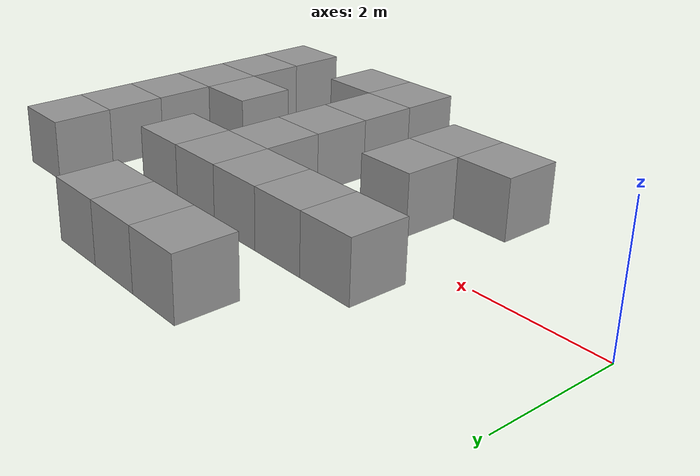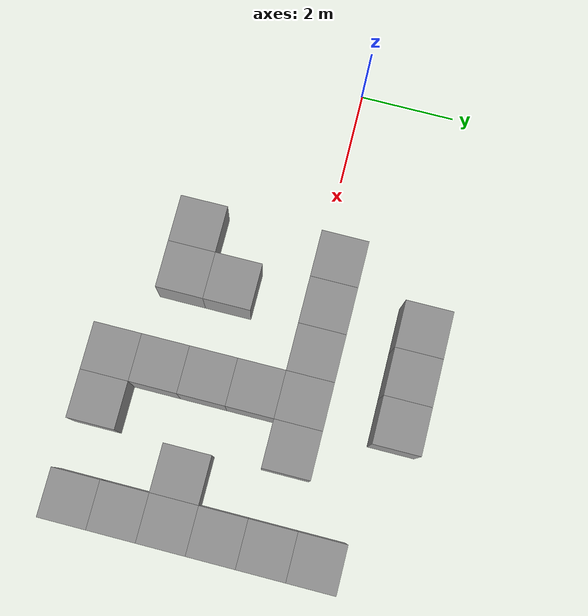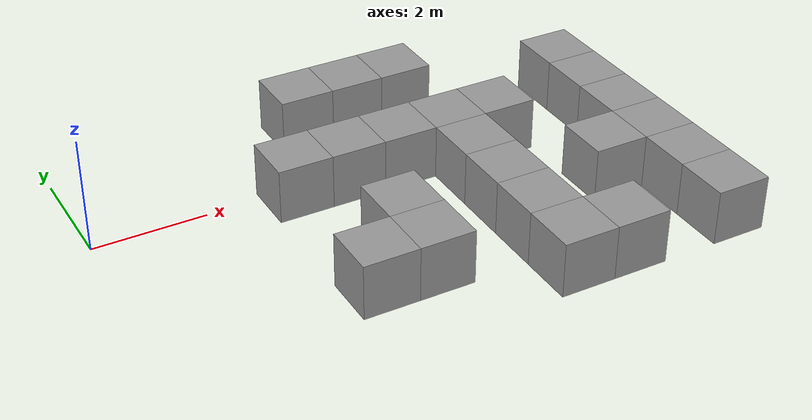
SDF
<sdf version="1.7">
 <model name="maze1">
  <link name="link_1_clone_133">
   <inertial>
    <mass>1</mass>
    <inertia>
     <ixx>0.166667</ixx>
     <ixy>0</ixy>
     <ixz>0</ixz>
     <iyy>0.166667</iyy>
     <iyz>0</iyz>
     <izz>0.166667</izz>
    </inertia>
   </inertial>
   <pose>7.75382 0.374651 0 0 -0 0</pose>
   <visual name="visual">
    <geometry><box><size>1 1 1</size></box></geometry>
    <material>
     <lighting>1</lighting>
     <script><uri>file://media/materials/scripts/gazebo.material</uri><name>Gazebo/Grey</name></script>
     <shader type="pixel"><normal_map>__default__</normal_map></shader>
     <ambient>0.3 0.3 0.3 1</ambient>
     <diffuse>0.7 0.7 0.7 1</diffuse>
     <specular>0.01 0.01 0.01 1</specular>
     <emissive>0 0 0 1</emissive>
    </material>
   </visual>
   <collision name="collision">
    <geometry><box><size>1 1 1</size></box></geometry>
    <surface>
     <friction>
      <ode><mu>1</mu><mu2>1</mu2><fdir1>0 0 0</fdir1><slip1>0</slip1><slip2>0</slip2></ode>
      <torsional>
       <coefficient>1</coefficient>
       <patch_radius>0</patch_radius>
       <surface_radius>0</surface_radius>
       <use_patch_radius>1</use_patch_radius>
       <ode><slip>0</slip></ode>
      </torsional>
     </friction>
     <bounce><restitution_coefficient>0</restitution_coefficient><threshold>1e+06</threshold></bounce>
     <contact>
      <collide_without_contact>0</collide_without_contact>
      <collide_without_contact_bitmask>1</collide_without_contact_bitmask>
      <collide_bitmask>1</collide_bitmask>
      <ode>
       <soft_cfm>0</soft_cfm>
       <soft_erp>0.2</soft_erp>
       <kp>1e+13</kp>
       <kd>1</kd>
       <max_vel>0.01</max_vel>
       <min_depth>0</min_depth>
      </ode>
      <bullet>
       <split_impulse>1</split_impulse>
       <split_impulse_penetration_threshold>-0.01</split_impulse_penetration_threshold>
       <soft_cfm>0</soft_cfm>
       <soft_erp>0.2</soft_erp>
       <kp>1e+13</kp>
       <kd>1</kd>
      </bullet>
     </contact>
    </surface>
   </collision>
  </link>
  <link name="link_1_clone_134">
   <inertial>
    <mass>1</mass>
    <inertia>
     <ixx>0.166667</ixx>
     <ixy>0</ixy>
     <ixz>0</ixz>
     <iyy>0.166667</iyy>
     <iyz>0</iyz>
     <izz>0.166667</izz>
    </inertia>
   </inertial>
   <pose>6.75382 0.374651 0 0 -0 0</pose>
   <visual name="visual">
    <geometry><box><size>1 1 1</size></box></geometry>
    <material>
     <lighting>1</lighting>
     <script><uri>file://media/materials/scripts/gazebo.material</uri><name>Gazebo/Grey</name></script>
     <shader type="pixel"><normal_map>__default__</normal_map></shader>
     <ambient>0.3 0.3 0.3 1</ambient>
     <diffuse>0.7 0.7 0.7 1</diffuse>
     <specular>0.01 0.01 0.01 1</specular>
     <emissive>0 0 0 1</emissive>
    </material>
   </visual>
   <collision name="collision">
    <geometry><box><size>1 1 1</size></box></geometry>
    <surface>
     <friction>
      <ode><mu>1</mu><mu2>1</mu2><fdir1>0 0 0</fdir1><slip1>0</slip1><slip2>0</slip2></ode>
      <torsional>
       <coefficient>1</coefficient>
       <patch_radius>0</patch_radius>
       <surface_radius>0</surface_radius>
       <use_patch_radius>1</use_patch_radius>
       <ode><slip>0</slip></ode>
      </torsional>
     </friction>
     <bounce><restitution_coefficient>0</restitution_coefficient><threshold>1e+06</threshold></bounce>
     <contact>
      <collide_without_contact>0</collide_without_contact>
      <collide_without_contact_bitmask>1</collide_without_contact_bitmask>
      <collide_bitmask>1</collide_bitmask>
      <ode>
       <soft_cfm>0</soft_cfm>
       <soft_erp>0.2</soft_erp>
       <kp>1e+13</kp>
       <kd>1</kd>
       <max_vel>0.01</max_vel>
       <min_depth>0</min_depth>
      </ode>
      <bullet>
       <split_impulse>1</split_impulse>
       <split_impulse_penetration_threshold>-0.01</split_impulse_penetration_threshold>
       <soft_cfm>0</soft_cfm>
       <soft_erp>0.2</soft_erp>
       <kp>1e+13</kp>
       <kd>1</kd>
      </bullet>
     </contact>
    </surface>
   </collision>
  </link>
  <link name="link_1_clone_135">
   <inertial>
    <mass>1</mass>
    <inertia>
     <ixx>0.166667</ixx>
     <ixy>0</ixy>
     <ixz>0</ixz>
     <iyy>0.166667</iyy>
     <iyz>0</iyz>
     <izz>0.166667</izz>
    </inertia>
   </inertial>
   <pose>5.75382 0.374651 0 0 -0 0</pose>
   <visual name="visual">
    <geometry><box><size>1 1 1</size></box></geometry>
    <material>
     <lighting>1</lighting>
     <script><uri>file://media/materials/scripts/gazebo.material</uri><name>Gazebo/Grey</name></script>
     <shader type="pixel"><normal_map>__default__</normal_map></shader>
     <ambient>0.3 0.3 0.3 1</ambient>
     <diffuse>0.7 0.7 0.7 1</diffuse>
     <specular>0.01 0.01 0.01 1</specular>
     <emissive>0 0 0 1</emissive>
    </material>
   </visual>
   <collision name="collision">
    <geometry><box><size>1 1 1</size></box></geometry>
    <surface>
     <friction>
      <ode><mu>1</mu><mu2>1</mu2><fdir1>0 0 0</fdir1><slip1>0</slip1><slip2>0</slip2></ode>
      <torsional>
       <coefficient>1</coefficient>
       <patch_radius>0</patch_radius>
       <surface_radius>0</surface_radius>
       <use_patch_radius>1</use_patch_radius>
       <ode><slip>0</slip></ode>
      </torsional>
     </friction>
     <bounce><restitution_coefficient>0</restitution_coefficient><threshold>1e+06</threshold></bounce>
     <contact>
      <collide_without_contact>0</collide_without_contact>
      <collide_without_contact_bitmask>1</collide_without_contact_bitmask>
      <collide_bitmask>1</collide_bitmask>
      <ode>
       <soft_cfm>0</soft_cfm>
       <soft_erp>0.2</soft_erp>
       <kp>1e+13</kp>
       <kd>1</kd>
       <max_vel>0.01</max_vel>
       <min_depth>0</min_depth>
      </ode>
      <bullet>
       <split_impulse>1</split_impulse>
       <split_impulse_penetration_threshold>-0.01</split_impulse_penetration_threshold>
       <soft_cfm>0</soft_cfm>
       <soft_erp>0.2</soft_erp>
       <kp>1e+13</kp>
       <kd>1</kd>
      </bullet>
     </contact>
    </surface>
   </collision>
  </link>
  <link name="link_1_clone_136">
   <inertial>
    <mass>1</mass>
    <inertia>
     <ixx>0.166667</ixx>
     <ixy>0</ixy>
     <ixz>0</ixz>
     <iyy>0.166667</iyy>
     <iyz>0</iyz>
     <izz>0.166667</izz>
    </inertia>
   </inertial>
   <pose>4.75382 0.374651 0 0 -0 0</pose>
   <visual name="visual">
    <geometry><box><size>1 1 1</size></box></geometry>
    <material>
     <lighting>1</lighting>
     <script><uri>file://media/materials/scripts/gazebo.material</uri><name>Gazebo/Grey</name></script>
     <shader type="pixel"><normal_map>__default__</normal_map></shader>
     <ambient>0.3 0.3 0.3 1</ambient>
     <diffuse>0.7 0.7 0.7 1</diffuse>
     <specular>0.01 0.01 0.01 1</specular>
     <emissive>0 0 0 1</emissive>
    </material>
   </visual>
   <collision name="collision">
    <geometry><box><size>1 1 1</size></box></geometry>
    <surface>
     <friction>
      <ode><mu>1</mu><mu2>1</mu2><fdir1>0 0 0</fdir1><slip1>0</slip1><slip2>0</slip2></ode>
      <torsional>
       <coefficient>1</coefficient>
       <patch_radius>0</patch_radius>
       <surface_radius>0</surface_radius>
       <use_patch_radius>1</use_patch_radius>
       <ode><slip>0</slip></ode>
      </torsional>
     </friction>
     <bounce><restitution_coefficient>0</restitution_coefficient><threshold>1e+06</threshold></bounce>
     <contact>
      <collide_without_contact>0</collide_without_contact>
      <collide_without_contact_bitmask>1</collide_without_contact_bitmask>
      <collide_bitmask>1</collide_bitmask>
      <ode>
       <soft_cfm>0</soft_cfm>
       <soft_erp>0.2</soft_erp>
       <kp>1e+13</kp>
       <kd>1</kd>
       <max_vel>0.01</max_vel>
       <min_depth>0</min_depth>
      </ode>
      <bullet>
       <split_impulse>1</split_impulse>
       <split_impulse_penetration_threshold>-0.01</split_impulse_penetration_threshold>
       <soft_cfm>0</soft_cfm>
       <soft_erp>0.2</soft_erp>
       <kp>1e+13</kp>
       <kd>1</kd>
      </bullet>
     </contact>
    </surface>
   </collision>
  </link>
  <link name="link_1_clone_137">
   <inertial>
    <mass>1</mass>
    <inertia>
     <ixx>0.166667</ixx>
     <ixy>0</ixy>
     <ixz>0</ixz>
     <iyy>0.166667</iyy>
     <iyz>0</iyz>
     <izz>0.166667</izz>
    </inertia>
   </inertial>
   <pose>3.75382 0.374651 0 0 -0 0</pose>
   <visual name="visual">
    <geometry><box><size>1 1 1</size></box></geometry>
    <material>
     <lighting>1</lighting>
     <script><uri>file://media/materials/scripts/gazebo.material</uri><name>Gazebo/Grey</name></script>
     <shader type="pixel"><normal_map>__default__</normal_map></shader>
     <ambient>0.3 0.3 0.3 1</ambient>
     <diffuse>0.7 0.7 0.7 1</diffuse>
     <specular>0.01 0.01 0.01 1</specular>
     <emissive>0 0 0 1</emissive>
    </material>
   </visual>
   <collision name="collision">
    <geometry><box><size>1 1 1</size></box></geometry>
    <surface>
     <friction>
      <ode><mu>1</mu><mu2>1</mu2><fdir1>0 0 0</fdir1><slip1>0</slip1><slip2>0</slip2></ode>
      <torsional>
       <coefficient>1</coefficient>
       <patch_radius>0</patch_radius>
       <surface_radius>0</surface_radius>
       <use_patch_radius>1</use_patch_radius>
       <ode><slip>0</slip></ode>
      </torsional>
     </friction>
     <bounce><restitution_coefficient>0</restitution_coefficient><threshold>1e+06</threshold></bounce>
     <contact>
      <collide_without_contact>0</collide_without_contact>
      <collide_without_contact_bitmask>1</collide_without_contact_bitmask>
      <collide_bitmask>1</collide_bitmask>
      <ode>
       <soft_cfm>0</soft_cfm>
       <soft_erp>0.2</soft_erp>
       <kp>1e+13</kp>
       <kd>1</kd>
       <max_vel>0.01</max_vel>
       <min_depth>0</min_depth>
      </ode>
      <bullet>
       <split_impulse>1</split_impulse>
       <split_impulse_penetration_threshold>-0.01</split_impulse_penetration_threshold>
       <soft_cfm>0</soft_cfm>
       <soft_erp>0.2</soft_erp>
       <kp>1e+13</kp>
       <kd>1</kd>
      </bullet>
     </contact>
    </surface>
   </collision>
  </link>
  <link name="link_1_clone_144">
   <inertial>
    <mass>1</mass>
    <inertia>
     <ixx>0.166667</ixx>
     <ixy>0</ixy>
     <ixz>0</ixz>
     <iyy>0.166667</iyy>
     <iyz>0</iyz>
     <izz>0.166667</izz>
    </inertia>
   </inertial>
   <pose>6.75382 -0.625349 0 0 -0 0</pose>
   <visual name="visual">
    <geometry><box><size>1 1 1</size></box></geometry>
    <material>
     <lighting>1</lighting>
     <script><uri>file://media/materials/scripts/gazebo.material</uri><name>Gazebo/Grey</name></script>
     <shader type="pixel"><normal_map>__default__</normal_map></shader>
     <ambient>0.3 0.3 0.3 1</ambient>
     <diffuse>0.7 0.7 0.7 1</diffuse>
     <specular>0.01 0.01 0.01 1</specular>
     <emissive>0 0 0 1</emissive>
    </material>
   </visual>
   <collision name="collision">
    <geometry><box><size>1 1 1</size></box></geometry>
    <surface>
     <friction>
      <ode><mu>1</mu><mu2>1</mu2><fdir1>0 0 0</fdir1><slip1>0</slip1><slip2>0</slip2></ode>
      <torsional>
       <coefficient>1</coefficient>
       <patch_radius>0</patch_radius>
       <surface_radius>0</surface_radius>
       <use_patch_radius>1</use_patch_radius>
       <ode><slip>0</slip></ode>
      </torsional>
     </friction>
     <bounce><restitution_coefficient>0</restitution_coefficient><threshold>1e+06</threshold></bounce>
     <contact>
      <collide_without_contact>0</collide_without_contact>
      <collide_without_contact_bitmask>1</collide_without_contact_bitmask>
      <collide_bitmask>1</collide_bitmask>
      <ode>
       <soft_cfm>0</soft_cfm>
       <soft_erp>0.2</soft_erp>
       <kp>1e+13</kp>
       <kd>1</kd>
       <max_vel>0.01</max_vel>
       <min_depth>0</min_depth>
      </ode>
      <bullet>
       <split_impulse>1</split_impulse>
       <split_impulse_penetration_threshold>-0.01</split_impulse_penetration_threshold>
       <soft_cfm>0</soft_cfm>
       <soft_erp>0.2</soft_erp>
       <kp>1e+13</kp>
       <kd>1</kd>
      </bullet>
     </contact>
    </surface>
   </collision>
  </link>
  <link name="link_1_clone_145">
   <inertial>
    <mass>1</mass>
    <inertia>
     <ixx>0.166667</ixx>
     <ixy>0</ixy>
     <ixz>0</ixz>
     <iyy>0.166667</iyy>
     <iyz>0</iyz>
     <izz>0.166667</izz>
    </inertia>
   </inertial>
   <pose>6.75382 -1.62535 0 0 -0 0</pose>
   <visual name="visual">
    <geometry><box><size>1 1 1</size></box></geometry>
    <material>
     <lighting>1</lighting>
     <script><uri>file://media/materials/scripts/gazebo.material</uri><name>Gazebo/Grey</name></script>
     <shader type="pixel"><normal_map>__default__</normal_map></shader>
     <ambient>0.3 0.3 0.3 1</ambient>
     <diffuse>0.7 0.7 0.7 1</diffuse>
     <specular>0.01 0.01 0.01 1</specular>
     <emissive>0 0 0 1</emissive>
    </material>
   </visual>
   <collision name="collision">
    <geometry><box><size>1 1 1</size></box></geometry>
    <surface>
     <friction>
      <ode><mu>1</mu><mu2>1</mu2><fdir1>0 0 0</fdir1><slip1>0</slip1><slip2>0</slip2></ode>
      <torsional>
       <coefficient>1</coefficient>
       <patch_radius>0</patch_radius>
       <surface_radius>0</surface_radius>
       <use_patch_radius>1</use_patch_radius>
       <ode><slip>0</slip></ode>
      </torsional>
     </friction>
     <bounce><restitution_coefficient>0</restitution_coefficient><threshold>1e+06</threshold></bounce>
     <contact>
      <collide_without_contact>0</collide_without_contact>
      <collide_without_contact_bitmask>1</collide_without_contact_bitmask>
      <collide_bitmask>1</collide_bitmask>
      <ode>
       <soft_cfm>0</soft_cfm>
       <soft_erp>0.2</soft_erp>
       <kp>1e+13</kp>
       <kd>1</kd>
       <max_vel>0.01</max_vel>
       <min_depth>0</min_depth>
      </ode>
      <bullet>
       <split_impulse>1</split_impulse>
       <split_impulse_penetration_threshold>-0.01</split_impulse_penetration_threshold>
       <soft_cfm>0</soft_cfm>
       <soft_erp>0.2</soft_erp>
       <kp>1e+13</kp>
       <kd>1</kd>
      </bullet>
     </contact>
    </surface>
   </collision>
  </link>
  <link name="link_1_clone_146">
   <inertial>
    <mass>1</mass>
    <inertia>
     <ixx>0.166667</ixx>
     <ixy>0</ixy>
     <ixz>0</ixz>
     <iyy>0.166667</iyy>
     <iyz>0</iyz>
     <izz>0.166667</izz>
    </inertia>
   </inertial>
   <pose>6.75382 -2.62535 0 0 -0 0</pose>
   <visual name="visual">
    <geometry><box><size>1 1 1</size></box></geometry>
    <material>
     <lighting>1</lighting>
     <script><uri>file://media/materials/scripts/gazebo.material</uri><name>Gazebo/Grey</name></script>
     <shader type="pixel"><normal_map>__default__</normal_map></shader>
     <ambient>0.3 0.3 0.3 1</ambient>
     <diffuse>0.7 0.7 0.7 1</diffuse>
     <specular>0.01 0.01 0.01 1</specular>
     <emissive>0 0 0 1</emissive>
    </material>
   </visual>
   <collision name="collision">
    <geometry><box><size>1 1 1</size></box></geometry>
    <surface>
     <friction>
      <ode><mu>1</mu><mu2>1</mu2><fdir1>0 0 0</fdir1><slip1>0</slip1><slip2>0</slip2></ode>
      <torsional>
       <coefficient>1</coefficient>
       <patch_radius>0</patch_radius>
       <surface_radius>0</surface_radius>
       <use_patch_radius>1</use_patch_radius>
       <ode><slip>0</slip></ode>
      </torsional>
     </friction>
     <bounce><restitution_coefficient>0</restitution_coefficient><threshold>1e+06</threshold></bounce>
     <contact>
      <collide_without_contact>0</collide_without_contact>
      <collide_without_contact_bitmask>1</collide_without_contact_bitmask>
      <collide_bitmask>1</collide_bitmask>
      <ode>
       <soft_cfm>0</soft_cfm>
       <soft_erp>0.2</soft_erp>
       <kp>1e+13</kp>
       <kd>1</kd>
       <max_vel>0.01</max_vel>
       <min_depth>0</min_depth>
      </ode>
      <bullet>
       <split_impulse>1</split_impulse>
       <split_impulse_penetration_threshold>-0.01</split_impulse_penetration_threshold>
       <soft_cfm>0</soft_cfm>
       <soft_erp>0.2</soft_erp>
       <kp>1e+13</kp>
       <kd>1</kd>
      </bullet>
     </contact>
    </surface>
   </collision>
  </link>
  <link name="link_1_clone_147">
   <inertial>
    <mass>1</mass>
    <inertia>
     <ixx>0.166667</ixx>
     <ixy>0</ixy>
     <ixz>0</ixz>
     <iyy>0.166667</iyy>
     <iyz>0</iyz>
     <izz>0.166667</izz>
    </inertia>
   </inertial>
   <pose>6.75382 -3.62535 0 0 -0 0</pose>
   <visual name="visual">
    <geometry><box><size>1 1 1</size></box></geometry>
    <material>
     <lighting>1</lighting>
     <script><uri>file://media/materials/scripts/gazebo.material</uri><name>Gazebo/Grey</name></script>
     <shader type="pixel"><normal_map>__default__</normal_map></shader>
     <ambient>0.3 0.3 0.3 1</ambient>
     <diffuse>0.7 0.7 0.7 1</diffuse>
     <specular>0.01 0.01 0.01 1</specular>
     <emissive>0 0 0 1</emissive>
    </material>
   </visual>
   <collision name="collision">
    <geometry><box><size>1 1 1</size></box></geometry>
    <surface>
     <friction>
      <ode><mu>1</mu><mu2>1</mu2><fdir1>0 0 0</fdir1><slip1>0</slip1><slip2>0</slip2></ode>
      <torsional>
       <coefficient>1</coefficient>
       <patch_radius>0</patch_radius>
       <surface_radius>0</surface_radius>
       <use_patch_radius>1</use_patch_radius>
       <ode><slip>0</slip></ode>
      </torsional>
     </friction>
     <bounce><restitution_coefficient>0</restitution_coefficient><threshold>1e+06</threshold></bounce>
     <contact>
      <collide_without_contact>0</collide_without_contact>
      <collide_without_contact_bitmask>1</collide_without_contact_bitmask>
      <collide_bitmask>1</collide_bitmask>
      <ode>
       <soft_cfm>0</soft_cfm>
       <soft_erp>0.2</soft_erp>
       <kp>1e+13</kp>
       <kd>1</kd>
       <max_vel>0.01</max_vel>
       <min_depth>0</min_depth>
      </ode>
      <bullet>
       <split_impulse>1</split_impulse>
       <split_impulse_penetration_threshold>-0.01</split_impulse_penetration_threshold>
       <soft_cfm>0</soft_cfm>
       <soft_erp>0.2</soft_erp>
       <kp>1e+13</kp>
       <kd>1</kd>
      </bullet>
     </contact>
    </surface>
   </collision>
  </link>
  <link name="link_1_clone_148">
   <inertial>
    <mass>1</mass>
    <inertia>
     <ixx>0.166667</ixx>
     <ixy>0</ixy>
     <ixz>0</ixz>
     <iyy>0.166667</iyy>
     <iyz>0</iyz>
     <izz>0.166667</izz>
    </inertia>
   </inertial>
   <pose>8.75382 -1.62535 0 0 -0 0</pose>
   <visual name="visual">
    <geometry><box><size>1 1 1</size></box></geometry>
    <material>
     <lighting>1</lighting>
     <script><uri>file://media/materials/scripts/gazebo.material</uri><name>Gazebo/Grey</name></script>
     <shader type="pixel"><normal_map>__default__</normal_map></shader>
     <ambient>0.3 0.3 0.3 1</ambient>
     <diffuse>0.7 0.7 0.7 1</diffuse>
     <specular>0.01 0.01 0.01 1</specular>
     <emissive>0 0 0 1</emissive>
    </material>
   </visual>
   <collision name="collision">
    <geometry><box><size>1 1 1</size></box></geometry>
    <surface>
     <friction>
      <ode><mu>1</mu><mu2>1</mu2><fdir1>0 0 0</fdir1><slip1>0</slip1><slip2>0</slip2></ode>
      <torsional>
       <coefficient>1</coefficient>
       <patch_radius>0</patch_radius>
       <surface_radius>0</surface_radius>
       <use_patch_radius>1</use_patch_radius>
       <ode><slip>0</slip></ode>
      </torsional>
     </friction>
     <bounce><restitution_coefficient>0</restitution_coefficient><threshold>1e+06</threshold></bounce>
     <contact>
      <collide_without_contact>0</collide_without_contact>
      <collide_without_contact_bitmask>1</collide_without_contact_bitmask>
      <collide_bitmask>1</collide_bitmask>
      <ode>
       <soft_cfm>0</soft_cfm>
       <soft_erp>0.2</soft_erp>
       <kp>1e+13</kp>
       <kd>1</kd>
       <max_vel>0.01</max_vel>
       <min_depth>0</min_depth>
      </ode>
      <bullet>
       <split_impulse>1</split_impulse>
       <split_impulse_penetration_threshold>-0.01</split_impulse_penetration_threshold>
       <soft_cfm>0</soft_cfm>
       <soft_erp>0.2</soft_erp>
       <kp>1e+13</kp>
       <kd>1</kd>
      </bullet>
     </contact>
    </surface>
   </collision>
  </link>
  <link name="link_1_clone_149">
   <inertial>
    <mass>1</mass>
    <inertia>
     <ixx>0.166667</ixx>
     <ixy>0</ixy>
     <ixz>0</ixz>
     <iyy>0.166667</iyy>
     <iyz>0</iyz>
     <izz>0.166667</izz>
    </inertia>
   </inertial>
   <pose>7.75382 -3.62535 0 0 -0 0</pose>
   <visual name="visual">
    <geometry><box><size>1 1 1</size></box></geometry>
    <material>
     <lighting>1</lighting>
     <script><uri>file://media/materials/scripts/gazebo.material</uri><name>Gazebo/Grey</name></script>
     <shader type="pixel"><normal_map>__default__</normal_map></shader>
     <ambient>0.3 0.3 0.3 1</ambient>
     <diffuse>0.7 0.7 0.7 1</diffuse>
     <specular>0.01 0.01 0.01 1</specular>
     <emissive>0 0 0 1</emissive>
    </material>
   </visual>
   <collision name="collision">
    <geometry><box><size>1 1 1</size></box></geometry>
    <surface>
     <friction>
      <ode><mu>1</mu><mu2>1</mu2><fdir1>0 0 0</fdir1><slip1>0</slip1><slip2>0</slip2></ode>
      <torsional>
       <coefficient>1</coefficient>
       <patch_radius>0</patch_radius>
       <surface_radius>0</surface_radius>
       <use_patch_radius>1</use_patch_radius>
       <ode><slip>0</slip></ode>
      </torsional>
     </friction>
     <bounce><restitution_coefficient>0</restitution_coefficient><threshold>1e+06</threshold></bounce>
     <contact>
      <collide_without_contact>0</collide_without_contact>
      <collide_without_contact_bitmask>1</collide_without_contact_bitmask>
      <collide_bitmask>1</collide_bitmask>
      <ode>
       <soft_cfm>0</soft_cfm>
       <soft_erp>0.2</soft_erp>
       <kp>1e+13</kp>
       <kd>1</kd>
       <max_vel>0.01</max_vel>
       <min_depth>0</min_depth>
      </ode>
      <bullet>
       <split_impulse>1</split_impulse>
       <split_impulse_penetration_threshold>-0.01</split_impulse_penetration_threshold>
       <soft_cfm>0</soft_cfm>
       <soft_erp>0.2</soft_erp>
       <kp>1e+13</kp>
       <kd>1</kd>
      </bullet>
     </contact>
    </surface>
   </collision>
  </link>
  <link name="link_1_clone_165">
   <inertial>
    <mass>1</mass>
    <inertia>
     <ixx>0.166667</ixx>
     <ixy>0</ixy>
     <ixz>0</ixz>
     <iyy>0.166667</iyy>
     <iyz>0</iyz>
     <izz>0.166667</izz>
    </inertia>
   </inertial>
   <pose>4.75382 -2.62535 0 0 -0 0</pose>
   <visual name="visual">
    <geometry><box><size>1 1 1</size></box></geometry>
    <material>
     <lighting>1</lighting>
     <script><uri>file://media/materials/scripts/gazebo.material</uri><name>Gazebo/Grey</name></script>
     <shader type="pixel"><normal_map>__default__</normal_map></shader>
     <ambient>0.3 0.3 0.3 1</ambient>
     <diffuse>0.7 0.7 0.7 1</diffuse>
     <specular>0.01 0.01 0.01 1</specular>
     <emissive>0 0 0 1</emissive>
    </material>
   </visual>
   <collision name="collision">
    <geometry><box><size>1 1 1</size></box></geometry>
    <surface>
     <friction>
      <ode><mu>1</mu><mu2>1</mu2><fdir1>0 0 0</fdir1><slip1>0</slip1><slip2>0</slip2></ode>
      <torsional>
       <coefficient>1</coefficient>
       <patch_radius>0</patch_radius>
       <surface_radius>0</surface_radius>
       <use_patch_radius>1</use_patch_radius>
       <ode><slip>0</slip></ode>
      </torsional>
     </friction>
     <bounce><restitution_coefficient>0</restitution_coefficient><threshold>1e+06</threshold></bounce>
     <contact>
      <collide_without_contact>0</collide_without_contact>
      <collide_without_contact_bitmask>1</collide_without_contact_bitmask>
      <collide_bitmask>1</collide_bitmask>
      <ode>
       <soft_cfm>0</soft_cfm>
       <soft_erp>0.2</soft_erp>
       <kp>1e+13</kp>
       <kd>1</kd>
       <max_vel>0.01</max_vel>
       <min_depth>0</min_depth>
      </ode>
      <bullet>
       <split_impulse>1</split_impulse>
       <split_impulse_penetration_threshold>-0.01</split_impulse_penetration_threshold>
       <soft_cfm>0</soft_cfm>
       <soft_erp>0.2</soft_erp>
       <kp>1e+13</kp>
       <kd>1</kd>
      </bullet>
     </contact>
    </surface>
   </collision>
  </link>
  <link name="link_1_clone_166">
   <inertial>
    <mass>1</mass>
    <inertia>
     <ixx>0.166667</ixx>
     <ixy>0</ixy>
     <ixz>0</ixz>
     <iyy>0.166667</iyy>
     <iyz>0</iyz>
     <izz>0.166667</izz>
    </inertia>
   </inertial>
   <pose>4.75382 -1.62535 0 0 -0 0</pose>
   <visual name="visual">
    <geometry><box><size>1 1 1</size></box></geometry>
    <material>
     <lighting>1</lighting>
     <script><uri>file://media/materials/scripts/gazebo.material</uri><name>Gazebo/Grey</name></script>
     <shader type="pixel"><normal_map>__default__</normal_map></shader>
     <ambient>0.3 0.3 0.3 1</ambient>
     <diffuse>0.7 0.7 0.7 1</diffuse>
     <specular>0.01 0.01 0.01 1</specular>
     <emissive>0 0 0 1</emissive>
    </material>
   </visual>
   <collision name="collision">
    <geometry><box><size>1 1 1</size></box></geometry>
    <surface>
     <friction>
      <ode><mu>1</mu><mu2>1</mu2><fdir1>0 0 0</fdir1><slip1>0</slip1><slip2>0</slip2></ode>
      <torsional>
       <coefficient>1</coefficient>
       <patch_radius>0</patch_radius>
       <surface_radius>0</surface_radius>
       <use_patch_radius>1</use_patch_radius>
       <ode><slip>0</slip></ode>
      </torsional>
     </friction>
     <bounce><restitution_coefficient>0</restitution_coefficient><threshold>1e+06</threshold></bounce>
     <contact>
      <collide_without_contact>0</collide_without_contact>
      <collide_without_contact_bitmask>1</collide_without_contact_bitmask>
      <collide_bitmask>1</collide_bitmask>
      <ode>
       <soft_cfm>0</soft_cfm>
       <soft_erp>0.2</soft_erp>
       <kp>1e+13</kp>
       <kd>1</kd>
       <max_vel>0.01</max_vel>
       <min_depth>0</min_depth>
      </ode>
      <bullet>
       <split_impulse>1</split_impulse>
       <split_impulse_penetration_threshold>-0.01</split_impulse_penetration_threshold>
       <soft_cfm>0</soft_cfm>
       <soft_erp>0.2</soft_erp>
       <kp>1e+13</kp>
       <kd>1</kd>
      </bullet>
     </contact>
    </surface>
   </collision>
  </link>
  <link name="link_1_clone_168">
   <inertial>
    <mass>1</mass>
    <inertia>
     <ixx>0.166667</ixx>
     <ixy>0</ixy>
     <ixz>0</ixz>
     <iyy>0.166667</iyy>
     <iyz>0</iyz>
     <izz>0.166667</izz>
    </inertia>
   </inertial>
   <pose>3.75382 -2.62535 0 0 -0 0</pose>
   <visual name="visual">
    <geometry><box><size>1 1 1</size></box></geometry>
    <material>
     <lighting>1</lighting>
     <script><uri>file://media/materials/scripts/gazebo.material</uri><name>Gazebo/Grey</name></script>
     <shader type="pixel"><normal_map>__default__</normal_map></shader>
     <ambient>0.3 0.3 0.3 1</ambient>
     <diffuse>0.7 0.7 0.7 1</diffuse>
     <specular>0.01 0.01 0.01 1</specular>
     <emissive>0 0 0 1</emissive>
    </material>
   </visual>
   <collision name="collision">
    <geometry><box><size>1 1 1</size></box></geometry>
    <surface>
     <friction>
      <ode><mu>1</mu><mu2>1</mu2><fdir1>0 0 0</fdir1><slip1>0</slip1><slip2>0</slip2></ode>
      <torsional>
       <coefficient>1</coefficient>
       <patch_radius>0</patch_radius>
       <surface_radius>0</surface_radius>
       <use_patch_radius>1</use_patch_radius>
       <ode><slip>0</slip></ode>
      </torsional>
     </friction>
     <bounce><restitution_coefficient>0</restitution_coefficient><threshold>1e+06</threshold></bounce>
     <contact>
      <collide_without_contact>0</collide_without_contact>
      <collide_without_contact_bitmask>1</collide_without_contact_bitmask>
      <collide_bitmask>1</collide_bitmask>
      <ode>
       <soft_cfm>0</soft_cfm>
       <soft_erp>0.2</soft_erp>
       <kp>1e+13</kp>
       <kd>1</kd>
       <max_vel>0.01</max_vel>
       <min_depth>0</min_depth>
      </ode>
      <bullet>
       <split_impulse>1</split_impulse>
       <split_impulse_penetration_threshold>-0.01</split_impulse_penetration_threshold>
       <soft_cfm>0</soft_cfm>
       <soft_erp>0.2</soft_erp>
       <kp>1e+13</kp>
       <kd>1</kd>
      </bullet>
     </contact>
    </surface>
   </collision>
  </link>
  <link name="link_1_clone_62">
   <inertial>
    <mass>1</mass>
    <inertia>
     <ixx>0.166667</ixx>
     <ixy>0</ixy>
     <ixz>0</ixz>
     <iyy>0.166667</iyy>
     <iyz>0</iyz>
     <izz>0.166667</izz>
    </inertia>
   </inertial>
   <pose>9.75382 -3.62535 0 0 -0 0</pose>
   <visual name="visual">
    <geometry><box><size>1 1 1</size></box></geometry>
    <material>
     <lighting>1</lighting>
     <script><uri>file://media/materials/scripts/gazebo.material</uri><name>Gazebo/Grey</name></script>
     <shader type="pixel"><normal_map>__default__</normal_map></shader>
     <ambient>0.3 0.3 0.3 1</ambient>
     <diffuse>0.7 0.7 0.7 1</diffuse>
     <specular>0.01 0.01 0.01 1</specular>
     <emissive>0 0 0 1</emissive>
    </material>
   </visual>
   <collision name="collision">
    <geometry><box><size>1 1 1</size></box></geometry>
    <surface>
     <friction>
      <ode><mu>1</mu><mu2>1</mu2><fdir1>0 0 0</fdir1><slip1>0</slip1><slip2>0</slip2></ode>
      <torsional>
       <coefficient>1</coefficient>
       <patch_radius>0</patch_radius>
       <surface_radius>0</surface_radius>
       <use_patch_radius>1</use_patch_radius>
       <ode><slip>0</slip></ode>
      </torsional>
     </friction>
     <bounce><restitution_coefficient>0</restitution_coefficient><threshold>1e+06</threshold></bounce>
     <contact>
      <collide_without_contact>0</collide_without_contact>
      <collide_without_contact_bitmask>1</collide_without_contact_bitmask>
      <collide_bitmask>1</collide_bitmask>
      <ode>
       <soft_cfm>0</soft_cfm>
       <soft_erp>0.2</soft_erp>
       <kp>1e+13</kp>
       <kd>1</kd>
       <max_vel>0.01</max_vel>
       <min_depth>0</min_depth>
      </ode>
      <bullet>
       <split_impulse>1</split_impulse>
       <split_impulse_penetration_threshold>-0.01</split_impulse_penetration_threshold>
       <soft_cfm>0</soft_cfm>
       <soft_erp>0.2</soft_erp>
       <kp>1e+13</kp>
       <kd>1</kd>
      </bullet>
     </contact>
    </surface>
   </collision>
  </link>
  <link name="link_1_clone_63">
   <inertial>
    <mass>1</mass>
    <inertia>
     <ixx>0.166667</ixx>
     <ixy>0</ixy>
     <ixz>0</ixz>
     <iyy>0.166667</iyy>
     <iyz>0</iyz>
     <izz>0.166667</izz>
    </inertia>
   </inertial>
   <pose>9.75382 -2.62535 0 0 -0 0</pose>
   <visual name="visual">
    <geometry><box><size>1 1 1</size></box></geometry>
    <material>
     <lighting>1</lighting>
     <script><uri>file://media/materials/scripts/gazebo.material</uri><name>Gazebo/Grey</name></script>
     <shader type="pixel"><normal_map>__default__</normal_map></shader>
     <ambient>0.3 0.3 0.3 1</ambient>
     <diffuse>0.7 0.7 0.7 1</diffuse>
     <specular>0.01 0.01 0.01 1</specular>
     <emissive>0 0 0 1</emissive>
    </material>
   </visual>
   <collision name="collision">
    <geometry><box><size>1 1 1</size></box></geometry>
    <surface>
     <friction>
      <ode><mu>1</mu><mu2>1</mu2><fdir1>0 0 0</fdir1><slip1>0</slip1><slip2>0</slip2></ode>
      <torsional>
       <coefficient>1</coefficient>
       <patch_radius>0</patch_radius>
       <surface_radius>0</surface_radius>
       <use_patch_radius>1</use_patch_radius>
       <ode><slip>0</slip></ode>
      </torsional>
     </friction>
     <bounce><restitution_coefficient>0</restitution_coefficient><threshold>1e+06</threshold></bounce>
     <contact>
      <collide_without_contact>0</collide_without_contact>
      <collide_without_contact_bitmask>1</collide_without_contact_bitmask>
      <collide_bitmask>1</collide_bitmask>
      <ode>
       <soft_cfm>0</soft_cfm>
       <soft_erp>0.2</soft_erp>
       <kp>1e+13</kp>
       <kd>1</kd>
       <max_vel>0.01</max_vel>
       <min_depth>0</min_depth>
      </ode>
      <bullet>
       <split_impulse>1</split_impulse>
       <split_impulse_penetration_threshold>-0.01</split_impulse_penetration_threshold>
       <soft_cfm>0</soft_cfm>
       <soft_erp>0.2</soft_erp>
       <kp>1e+13</kp>
       <kd>1</kd>
      </bullet>
     </contact>
    </surface>
   </collision>
  </link>
  <link name="link_1_clone_64">
   <inertial>
    <mass>1</mass>
    <inertia>
     <ixx>0.166667</ixx>
     <ixy>0</ixy>
     <ixz>0</ixz>
     <iyy>0.166667</iyy>
     <iyz>0</iyz>
     <izz>0.166667</izz>
    </inertia>
   </inertial>
   <pose>9.75382 -1.62535 0 0 -0 0</pose>
   <visual name="visual">
    <geometry><box><size>1 1 1</size></box></geometry>
    <material>
     <lighting>1</lighting>
     <script><uri>file://media/materials/scripts/gazebo.material</uri><name>Gazebo/Grey</name></script>
     <shader type="pixel"><normal_map>__default__</normal_map></shader>
     <ambient>0.3 0.3 0.3 1</ambient>
     <diffuse>0.7 0.7 0.7 1</diffuse>
     <specular>0.01 0.01 0.01 1</specular>
     <emissive>0 0 0 1</emissive>
    </material>
   </visual>
   <collision name="collision">
    <geometry><box><size>1 1 1</size></box></geometry>
    <surface>
     <friction>
      <ode><mu>1</mu><mu2>1</mu2><fdir1>0 0 0</fdir1><slip1>0</slip1><slip2>0</slip2></ode>
      <torsional>
       <coefficient>1</coefficient>
       <patch_radius>0</patch_radius>
       <surface_radius>0</surface_radius>
       <use_patch_radius>1</use_patch_radius>
       <ode><slip>0</slip></ode>
      </torsional>
     </friction>
     <bounce><restitution_coefficient>0</restitution_coefficient><threshold>1e+06</threshold></bounce>
     <contact>
      <collide_without_contact>0</collide_without_contact>
      <collide_without_contact_bitmask>1</collide_without_contact_bitmask>
      <collide_bitmask>1</collide_bitmask>
      <ode>
       <soft_cfm>0</soft_cfm>
       <soft_erp>0.2</soft_erp>
       <kp>1e+13</kp>
       <kd>1</kd>
       <max_vel>0.01</max_vel>
       <min_depth>0</min_depth>
      </ode>
      <bullet>
       <split_impulse>1</split_impulse>
       <split_impulse_penetration_threshold>-0.01</split_impulse_penetration_threshold>
       <soft_cfm>0</soft_cfm>
       <soft_erp>0.2</soft_erp>
       <kp>1e+13</kp>
       <kd>1</kd>
      </bullet>
     </contact>
    </surface>
   </collision>
  </link>
  <link name="link_1_clone_65">
   <inertial>
    <mass>1</mass>
    <inertia>
     <ixx>0.166667</ixx>
     <ixy>0</ixy>
     <ixz>0</ixz>
     <iyy>0.166667</iyy>
     <iyz>0</iyz>
     <izz>0.166667</izz>
    </inertia>
   </inertial>
   <pose>9.75382 -0.625349 0 0 -0 0</pose>
   <visual name="visual">
    <geometry><box><size>1 1 1</size></box></geometry>
    <material>
     <lighting>1</lighting>
     <script><uri>file://media/materials/scripts/gazebo.material</uri><name>Gazebo/Grey</name></script>
     <shader type="pixel"><normal_map>__default__</normal_map></shader>
     <ambient>0.3 0.3 0.3 1</ambient>
     <diffuse>0.7 0.7 0.7 1</diffuse>
     <specular>0.01 0.01 0.01 1</specular>
     <emissive>0 0 0 1</emissive>
    </material>
   </visual>
   <collision name="collision">
    <geometry><box><size>1 1 1</size></box></geometry>
    <surface>
     <friction>
      <ode><mu>1</mu><mu2>1</mu2><fdir1>0 0 0</fdir1><slip1>0</slip1><slip2>0</slip2></ode>
      <torsional>
       <coefficient>1</coefficient>
       <patch_radius>0</patch_radius>
       <surface_radius>0</surface_radius>
       <use_patch_radius>1</use_patch_radius>
       <ode><slip>0</slip></ode>
      </torsional>
     </friction>
     <bounce><restitution_coefficient>0</restitution_coefficient><threshold>1e+06</threshold></bounce>
     <contact>
      <collide_without_contact>0</collide_without_contact>
      <collide_without_contact_bitmask>1</collide_without_contact_bitmask>
      <collide_bitmask>1</collide_bitmask>
      <ode>
       <soft_cfm>0</soft_cfm>
       <soft_erp>0.2</soft_erp>
       <kp>1e+13</kp>
       <kd>1</kd>
       <max_vel>0.01</max_vel>
       <min_depth>0</min_depth>
      </ode>
      <bullet>
       <split_impulse>1</split_impulse>
       <split_impulse_penetration_threshold>-0.01</split_impulse_penetration_threshold>
       <soft_cfm>0</soft_cfm>
       <soft_erp>0.2</soft_erp>
       <kp>1e+13</kp>
       <kd>1</kd>
      </bullet>
     </contact>
    </surface>
   </collision>
  </link>
  <link name="link_1_clone_66">
   <inertial>
    <mass>1</mass>
    <inertia>
     <ixx>0.166667</ixx>
     <ixy>0</ixy>
     <ixz>0</ixz>
     <iyy>0.166667</iyy>
     <iyz>0</iyz>
     <izz>0.166667</izz>
    </inertia>
   </inertial>
   <pose>9.75382 0.374651 0 0 -0 0</pose>
   <visual name="visual">
    <geometry><box><size>1 1 1</size></box></geometry>
    <material>
     <lighting>1</lighting>
     <script><uri>file://media/materials/scripts/gazebo.material</uri><name>Gazebo/Grey</name></script>
     <shader type="pixel"><normal_map>__default__</normal_map></shader>
     <ambient>0.3 0.3 0.3 1</ambient>
     <diffuse>0.7 0.7 0.7 1</diffuse>
     <specular>0.01 0.01 0.01 1</specular>
     <emissive>0 0 0 1</emissive>
    </material>
   </visual>
   <collision name="collision">
    <geometry><box><size>1 1 1</size></box></geometry>
    <surface>
     <friction>
      <ode><mu>1</mu><mu2>1</mu2><fdir1>0 0 0</fdir1><slip1>0</slip1><slip2>0</slip2></ode>
      <torsional>
       <coefficient>1</coefficient>
       <patch_radius>0</patch_radius>
       <surface_radius>0</surface_radius>
       <use_patch_radius>1</use_patch_radius>
       <ode><slip>0</slip></ode>
      </torsional>
     </friction>
     <bounce><restitution_coefficient>0</restitution_coefficient><threshold>1e+06</threshold></bounce>
     <contact>
      <collide_without_contact>0</collide_without_contact>
      <collide_without_contact_bitmask>1</collide_without_contact_bitmask>
      <collide_bitmask>1</collide_bitmask>
      <ode>
       <soft_cfm>0</soft_cfm>
       <soft_erp>0.2</soft_erp>
       <kp>1e+13</kp>
       <kd>1</kd>
       <max_vel>0.01</max_vel>
       <min_depth>0</min_depth>
      </ode>
      <bullet>
       <split_impulse>1</split_impulse>
       <split_impulse_penetration_threshold>-0.01</split_impulse_penetration_threshold>
       <soft_cfm>0</soft_cfm>
       <soft_erp>0.2</soft_erp>
       <kp>1e+13</kp>
       <kd>1</kd>
      </bullet>
     </contact>
    </surface>
   </collision>
  </link>
  <link name="link_1_clone_67">
   <inertial>
    <mass>1</mass>
    <inertia>
     <ixx>0.166667</ixx>
     <ixy>0</ixy>
     <ixz>0</ixz>
     <iyy>0.166667</iyy>
     <iyz>0</iyz>
     <izz>0.166667</izz>
    </inertia>
   </inertial>
   <pose>9.75382 1.37465 0 0 -0 0</pose>
   <visual name="visual">
    <geometry><box><size>1 1 1</size></box></geometry>
    <material>
     <lighting>1</lighting>
     <script><uri>file://media/materials/scripts/gazebo.material</uri><name>Gazebo/Grey</name></script>
     <shader type="pixel"><normal_map>__default__</normal_map></shader>
     <ambient>0.3 0.3 0.3 1</ambient>
     <diffuse>0.7 0.7 0.7 1</diffuse>
     <specular>0.01 0.01 0.01 1</specular>
     <emissive>0 0 0 1</emissive>
    </material>
   </visual>
   <collision name="collision">
    <geometry><box><size>1 1 1</size></box></geometry>
    <surface>
     <friction>
      <ode><mu>1</mu><mu2>1</mu2><fdir1>0 0 0</fdir1><slip1>0</slip1><slip2>0</slip2></ode>
      <torsional>
       <coefficient>1</coefficient>
       <patch_radius>0</patch_radius>
       <surface_radius>0</surface_radius>
       <use_patch_radius>1</use_patch_radius>
       <ode><slip>0</slip></ode>
      </torsional>
     </friction>
     <bounce><restitution_coefficient>0</restitution_coefficient><threshold>1e+06</threshold></bounce>
     <contact>
      <collide_without_contact>0</collide_without_contact>
      <collide_without_contact_bitmask>1</collide_without_contact_bitmask>
      <collide_bitmask>1</collide_bitmask>
      <ode>
       <soft_cfm>0</soft_cfm>
       <soft_erp>0.2</soft_erp>
       <kp>1e+13</kp>
       <kd>1</kd>
       <max_vel>0.01</max_vel>
       <min_depth>0</min_depth>
      </ode>
      <bullet>
       <split_impulse>1</split_impulse>
       <split_impulse_penetration_threshold>-0.01</split_impulse_penetration_threshold>
       <soft_cfm>0</soft_cfm>
       <soft_erp>0.2</soft_erp>
       <kp>1e+13</kp>
       <kd>1</kd>
      </bullet>
     </contact>
    </surface>
   </collision>
  </link>
  <link name="link_1_clone_77">
   <inertial>
    <mass>1</mass>
    <inertia>
     <ixx>0.166667</ixx>
     <ixy>0</ixy>
     <ixz>0</ixz>
     <iyy>0.166667</iyy>
     <iyz>0</iyz>
     <izz>0.166667</izz>
    </inertia>
   </inertial>
   <pose>6.75382 2.37465 0 0 -0 0</pose>
   <visual name="visual">
    <geometry><box><size>1 1 1</size></box></geometry>
    <material>
     <lighting>1</lighting>
     <script><uri>file://media/materials/scripts/gazebo.material</uri><name>Gazebo/Grey</name></script>
     <shader type="pixel"><normal_map>__default__</normal_map></shader>
     <ambient>0.3 0.3 0.3 1</ambient>
     <diffuse>0.7 0.7 0.7 1</diffuse>
     <specular>0.01 0.01 0.01 1</specular>
     <emissive>0 0 0 1</emissive>
    </material>
   </visual>
   <collision name="collision">
    <geometry><box><size>1 1 1</size></box></geometry>
    <surface>
     <friction>
      <ode><mu>1</mu><mu2>1</mu2><fdir1>0 0 0</fdir1><slip1>0</slip1><slip2>0</slip2></ode>
      <torsional>
       <coefficient>1</coefficient>
       <patch_radius>0</patch_radius>
       <surface_radius>0</surface_radius>
       <use_patch_radius>1</use_patch_radius>
       <ode><slip>0</slip></ode>
      </torsional>
     </friction>
     <bounce><restitution_coefficient>0</restitution_coefficient><threshold>1e+06</threshold></bounce>
     <contact>
      <collide_without_contact>0</collide_without_contact>
      <collide_without_contact_bitmask>1</collide_without_contact_bitmask>
      <collide_bitmask>1</collide_bitmask>
      <ode>
       <soft_cfm>0</soft_cfm>
       <soft_erp>0.2</soft_erp>
       <kp>1e+13</kp>
       <kd>1</kd>
       <max_vel>0.01</max_vel>
       <min_depth>0</min_depth>
      </ode>
      <bullet>
       <split_impulse>1</split_impulse>
       <split_impulse_penetration_threshold>-0.01</split_impulse_penetration_threshold>
       <soft_cfm>0</soft_cfm>
       <soft_erp>0.2</soft_erp>
       <kp>1e+13</kp>
       <kd>1</kd>
      </bullet>
     </contact>
    </surface>
   </collision>
  </link>
  <link name="link_1_clone_78">
   <inertial>
    <mass>1</mass>
    <inertia>
     <ixx>0.166667</ixx>
     <ixy>0</ixy>
     <ixz>0</ixz>
     <iyy>0.166667</iyy>
     <iyz>0</iyz>
     <izz>0.166667</izz>
    </inertia>
   </inertial>
   <pose>5.75382 2.37465 0 0 -0 0</pose>
   <visual name="visual">
    <geometry><box><size>1 1 1</size></box></geometry>
    <material>
     <lighting>1</lighting>
     <script><uri>file://media/materials/scripts/gazebo.material</uri><name>Gazebo/Grey</name></script>
     <shader type="pixel"><normal_map>__default__</normal_map></shader>
     <ambient>0.3 0.3 0.3 1</ambient>
     <diffuse>0.7 0.7 0.7 1</diffuse>
     <specular>0.01 0.01 0.01 1</specular>
     <emissive>0 0 0 1</emissive>
    </material>
   </visual>
   <collision name="collision">
    <geometry><box><size>1 1 1</size></box></geometry>
    <surface>
     <friction>
      <ode><mu>1</mu><mu2>1</mu2><fdir1>0 0 0</fdir1><slip1>0</slip1><slip2>0</slip2></ode>
      <torsional>
       <coefficient>1</coefficient>
       <patch_radius>0</patch_radius>
       <surface_radius>0</surface_radius>
       <use_patch_radius>1</use_patch_radius>
       <ode><slip>0</slip></ode>
      </torsional>
     </friction>
     <bounce><restitution_coefficient>0</restitution_coefficient><threshold>1e+06</threshold></bounce>
     <contact>
      <collide_without_contact>0</collide_without_contact>
      <collide_without_contact_bitmask>1</collide_without_contact_bitmask>
      <collide_bitmask>1</collide_bitmask>
      <ode>
       <soft_cfm>0</soft_cfm>
       <soft_erp>0.2</soft_erp>
       <kp>1e+13</kp>
       <kd>1</kd>
       <max_vel>0.01</max_vel>
       <min_depth>0</min_depth>
      </ode>
      <bullet>
       <split_impulse>1</split_impulse>
       <split_impulse_penetration_threshold>-0.01</split_impulse_penetration_threshold>
       <soft_cfm>0</soft_cfm>
       <soft_erp>0.2</soft_erp>
       <kp>1e+13</kp>
       <kd>1</kd>
      </bullet>
     </contact>
    </surface>
   </collision>
  </link>
  <link name="link_1_clone_79">
   <inertial>
    <mass>1</mass>
    <inertia>
     <ixx>0.166667</ixx>
     <ixy>0</ixy>
     <ixz>0</ixz>
     <iyy>0.166667</iyy>
     <iyz>0</iyz>
     <izz>0.166667</izz>
    </inertia>
   </inertial>
   <pose>4.75382 2.37465 0 0 -0 0</pose>
   <visual name="visual">
    <geometry><box><size>1 1 1</size></box></geometry>
    <material>
     <lighting>1</lighting>
     <script><uri>file://media/materials/scripts/gazebo.material</uri><name>Gazebo/Grey</name></script>
     <shader type="pixel"><normal_map>__default__</normal_map></shader>
     <ambient>0.3 0.3 0.3 1</ambient>
     <diffuse>0.7 0.7 0.7 1</diffuse>
     <specular>0.01 0.01 0.01 1</specular>
     <emissive>0 0 0 1</emissive>
    </material>
   </visual>
   <collision name="collision">
    <geometry><box><size>1 1 1</size></box></geometry>
    <surface>
     <friction>
      <ode><mu>1</mu><mu2>1</mu2><fdir1>0 0 0</fdir1><slip1>0</slip1><slip2>0</slip2></ode>
      <torsional>
       <coefficient>1</coefficient>
       <patch_radius>0</patch_radius>
       <surface_radius>0</surface_radius>
       <use_patch_radius>1</use_patch_radius>
       <ode><slip>0</slip></ode>
      </torsional>
     </friction>
     <bounce><restitution_coefficient>0</restitution_coefficient><threshold>1e+06</threshold></bounce>
     <contact>
      <collide_without_contact>0</collide_without_contact>
      <collide_without_contact_bitmask>1</collide_without_contact_bitmask>
      <collide_bitmask>1</collide_bitmask>
      <ode>
       <soft_cfm>0</soft_cfm>
       <soft_erp>0.2</soft_erp>
       <kp>1e+13</kp>
       <kd>1</kd>
       <max_vel>0.01</max_vel>
       <min_depth>0</min_depth>
      </ode>
      <bullet>
       <split_impulse>1</split_impulse>
       <split_impulse_penetration_threshold>-0.01</split_impulse_penetration_threshold>
       <soft_cfm>0</soft_cfm>
       <soft_erp>0.2</soft_erp>
       <kp>1e+13</kp>
       <kd>1</kd>
      </bullet>
     </contact>
    </surface>
   </collision>
  </link>
  <static>0</static>
 </model>
</sdf>
